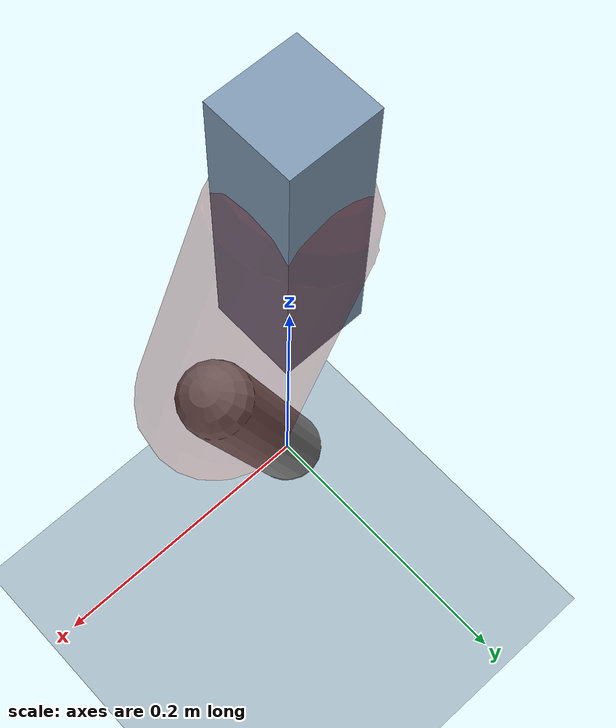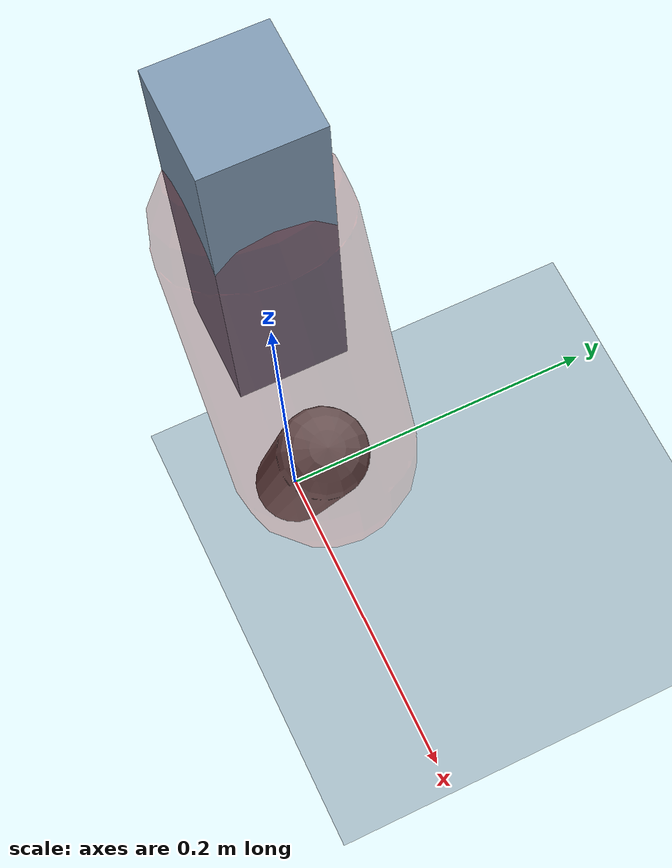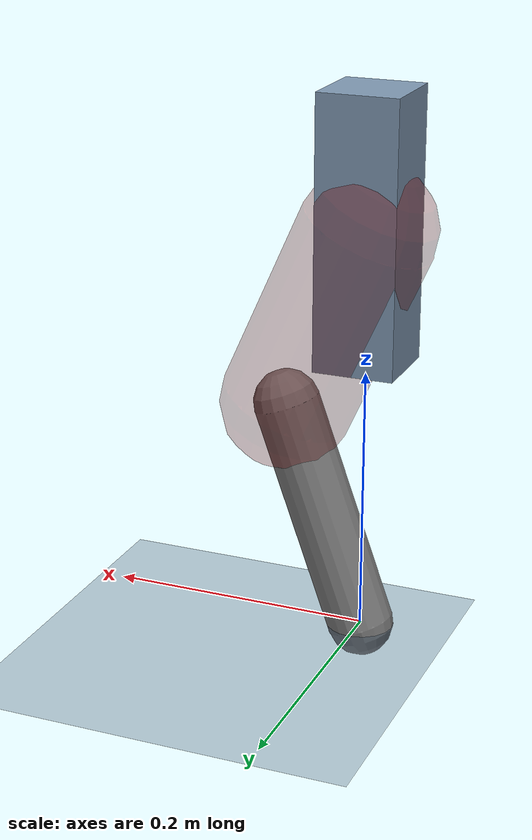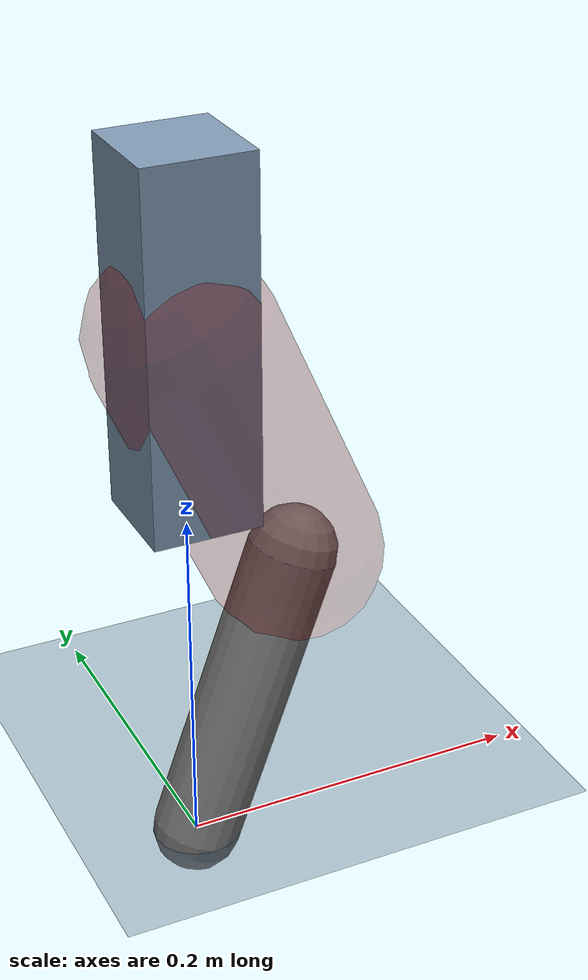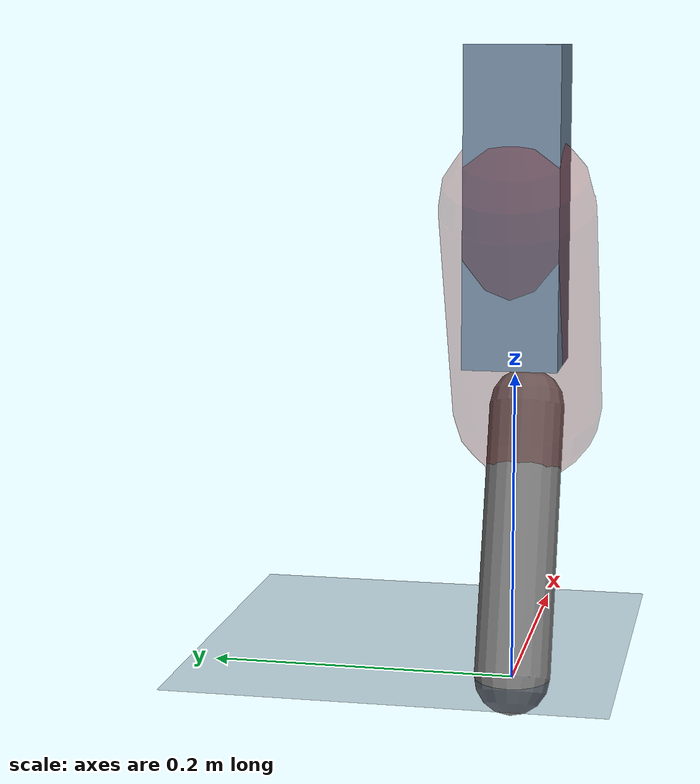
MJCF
<mujoco model="Hopper2D">
	<compiler inertiafromgeom="true" angle="radian" />
	<option timestep="0.001" integrator="implicit" cone="elliptic" solver="Newton" tolerance="1e-10" />

	<default>
		<geom contype="1" conaffinity="1" condim="3" friction="2 0.005 0.0001" solref="0.005 1" />
		<joint limited="true" damping="0.1" />
	</default>

	<asset>
		<texture name="skybox" type="skybox" builtin="gradient" rgb1=".4 .6 .8" rgb2="0 0 0" width="800" height="800" />
		<texture name="grid" type="2d" builtin="checker" rgb1=".1 .2 .3" rgb2=".2 .3 .4" width="300" height="300" mark="edge" markrgb=".2 .3 .4" />
		<material name="ground" texture="grid" texrepeat="1 1" texuniform="true" reflectance="0.1" />
		<material name="leg" rgba="0.5 0.6 0.7 1" />
	</asset>

	<worldbody>

		<geom name="floor" type="plane" size="5 5 0.25" material="ground" />

		<light directional="false" diffuse="0.8 0.8 0.8" specular="0.3 0.3 0.3" pos="0 0 2" dir="0 0 -1" />
		<light mode="targetbodycom" target="base" directional="false" diffuse="0.8 0.8 0.8" specular="0.3 0.3 0.3" pos="0 0 2" dir="0 0 -1" />

		<camera name="fixed" pos="0 -2 1" xyaxes="1 0 0 0 0 1" />
		<camera name="tracking" mode="trackcom" pos="0 -3 1" />

		<body name="root" pos="0 0 0.3064010435432209">
			<joint name="slide_x" type="slide" axis="1 0 0" range="-100 100" />
			<joint name="slide_z" type="slide" axis="0 0 1" range="0 10" />

			<body name="base" pos="0 0 0">
				<geom name="torso" type="box" size="0.03 0.03 0.1" mass="2.984" material="leg" />

				<body name="link1" pos="0 0 0" euler="0 1.1522720276171956 0">
					<joint type="hinge" axis="0 -1 0" pos="0 0 0" name="hinge1" limited="true" range="-3.14 3.14" stiffness="0" damping="0.1" />
					<geom name="thigh" type="capsule" fromto="0 0 0 0.15016488973938277 0 0" size="0.05" rgba="0.5 0 0 0.3" mass="0.6088957353745187" />

					<body name="link2" pos="0.15016488973938277 0 0" euler="0 0.7646971484841192 0">
						<joint type="hinge" axis="0 -1 0" pos="0 0 0" name="hinge2" limited="true" range="-3.14 3.14" stiffness="0" damping="0.1" />
						<geom name="shank" type="capsule" fromto="0 0 0 0.1798669751574891 0 0" size="0.025" mass="0.3837802776417402" />

					</body>
				</body>
			</body>
		</body>
	</worldbody>

	<actuator>
		<motor name="torque1" joint="hinge1" ctrlrange="-193.85313871225665 193.85313871225665" ctrllimited="true" gear="1" />
		<motor name="torque2" joint="hinge2" ctrlrange="-86.42183724456734 86.42183724456734" ctrllimited="true" gear="1" />
	</actuator>
</mujoco>
